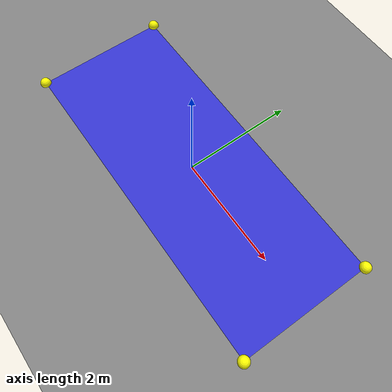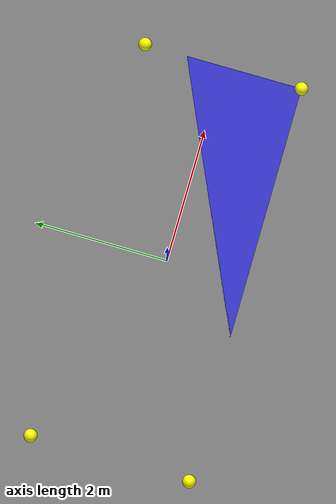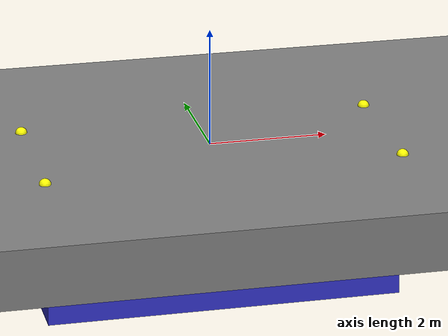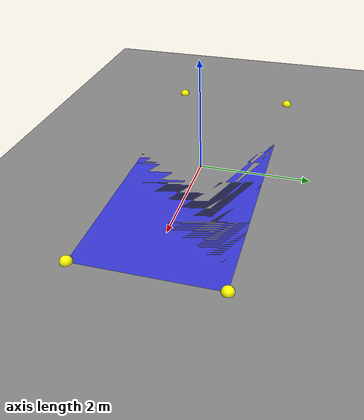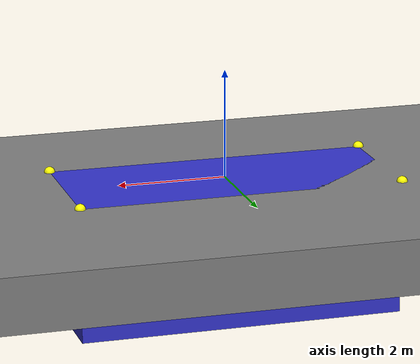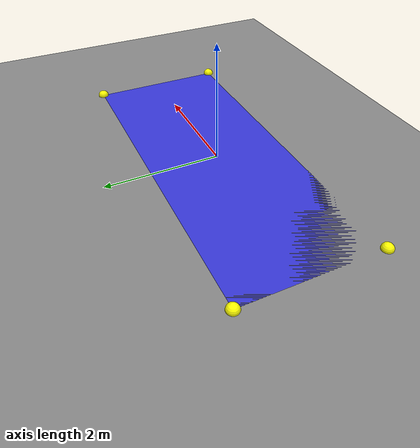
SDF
<sdf version="1.10">
 <world name="hypa_world">
  <model name="ground_plane">
   <static>true</static>
   <link name="link">
    <pose>0 0 -0.5 0 0 0</pose>
    <collision name="collision">
     <geometry><box><size>100 100 1</size></box></geometry>
     <surface><friction><ode><mu>100</mu><mu2>50</mu2></ode></friction></surface>
    </collision>
    <visual name="visual">
     <cast_shadows>false</cast_shadows>
     <geometry><box><size>100 100 1</size></box></geometry>
     <material>
      <ambient>0.5 0.5 0.5 1</ambient>
      <diffuse>0.5 0.5 0.5 1</diffuse>
      <specular>0.1 0.1 0.1 1</specular>
     </material>
    </visual>
   </link>
  </model>
  <model name="container">
   <pose relative_to="hypa::init_container_top_center">0 0 -2.5 0 0 0</pose>
   <link name="container_base">
    <inertial>
     <mass>2000</mass>
     <inertia><ixx>2500</ixx><ixy>0</ixy><ixz>0</ixz><iyy>10417</iyy><iyz>0</iyz><izz>8320</izz></inertia>
     <pose>0 0 1.25 0 0 0</pose>
    </inertial>
    <collision name="container_collision">
     <pose>0 0 1.25 0 0 0</pose>
     <geometry><box><size>6.0 2.4 2.5</size></box></geometry>
     <surface><friction><ode><mu>0.8</mu><mu2>0.6</mu2></ode></friction></surface>
    </collision>
    <visual name="container_visual">
     <pose>0 0 1.25 0 0 0</pose>
     <geometry><box><size>6.0 2.4 2.5</size></box></geometry>
     <material>
      <ambient>0.2 0.2 0.8 1</ambient>
      <diffuse>0.2 0.2 0.8 1</diffuse>
      <specular>0.1 0.1 0.1 1</specular>
     </material>
    </visual>
   </link>
   <link name="container_hook_fl">
    <pose>3.0 1.2 2.5 0 0 0</pose>
    <inertial>
     <mass>0.01</mass>
     <inertia><ixx>0.001</ixx><ixy>0</ixy><ixz>0</ixz><iyy>0.001</iyy><iyz>0</iyz><izz>0.001</izz></inertia>
    </inertial>
    <visual name="container_hook_fl_visual">
     <geometry><sphere><radius>0.1</radius></sphere></geometry>
     <material><ambient>1 1 0 1</ambient><diffuse>1 1 0 1</diffuse></material>
    </visual>
   </link>
   <link name="container_hook_fr">
    <pose>3.0 -1.2 2.5 0 0 0</pose>
    <inertial>
     <mass>0.01</mass>
     <inertia><ixx>0.001</ixx><ixy>0</ixy><ixz>0</ixz><iyy>0.001</iyy><iyz>0</iyz><izz>0.001</izz></inertia>
    </inertial>
    <visual name="container_hook_fr_visual">
     <geometry><sphere><radius>0.1</radius></sphere></geometry>
     <material><ambient>1 1 0 1</ambient><diffuse>1 1 0 1</diffuse></material>
    </visual>
   </link>
   <link name="container_hook_bl">
    <pose>-3.0 1.2 2.5 0 0 0</pose>
    <inertial>
     <mass>0.01</mass>
     <inertia><ixx>0.001</ixx><ixy>0</ixy><ixz>0</ixz><iyy>0.001</iyy><iyz>0</iyz><izz>0.001</izz></inertia>
    </inertial>
    <visual name="container_hook_bl_visual">
     <geometry><sphere><radius>0.1</radius></sphere></geometry>
     <material><ambient>1 1 0 1</ambient><diffuse>1 1 0 1</diffuse></material>
    </visual>
   </link>
   <link name="container_hook_br">
    <pose>-3.0 -1.2 2.5 0 0 0</pose>
    <inertial>
     <mass>0.01</mass>
     <inertia><ixx>0.001</ixx><ixy>0</ixy><ixz>0</ixz><iyy>0.001</iyy><iyz>0</iyz><izz>0.001</izz></inertia>
    </inertial>
    <visual name="container_hook_br_visual">
     <geometry><sphere><radius>0.1</radius></sphere></geometry>
     <material><ambient>1 1 0 1</ambient><diffuse>1 1 0 1</diffuse></material>
    </visual>
   </link>
   <joint name="fixed_container_hook_fl" type="fixed">
    <parent>container_base</parent>
    <child>container_hook_fl</child>
   </joint>
   <joint name="fixed_container_hook_fr" type="fixed">
    <parent>container_base</parent>
    <child>container_hook_fr</child>
   </joint>
   <joint name="fixed_container_hook_bl" type="fixed">
    <parent>container_base</parent>
    <child>container_hook_bl</child>
   </joint>
   <joint name="fixed_container_hook_br" type="fixed">
    <parent>container_base</parent>
    <child>container_hook_br</child>
   </joint>
  </model>
 </world>
</sdf>
